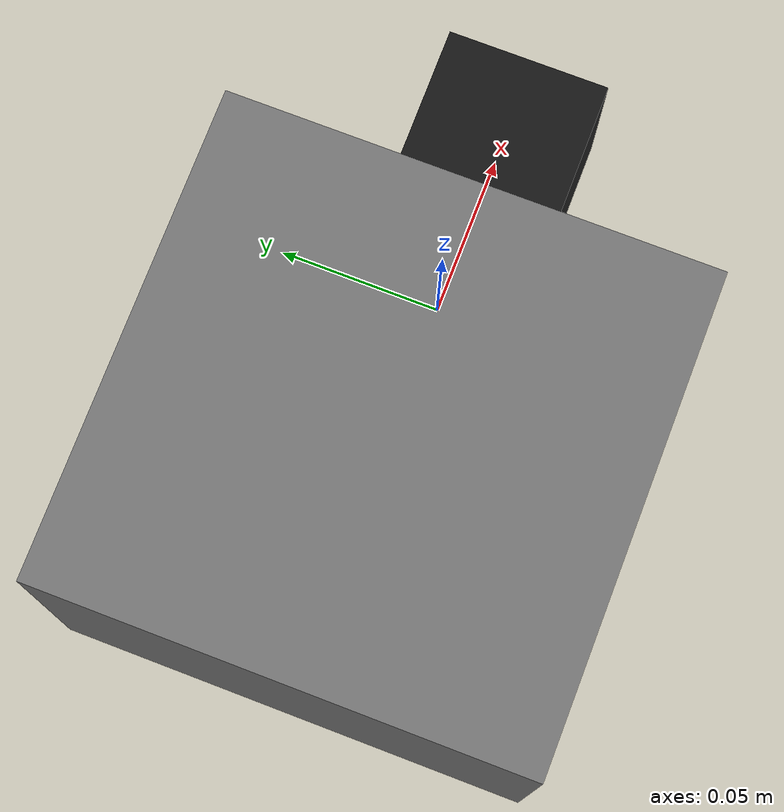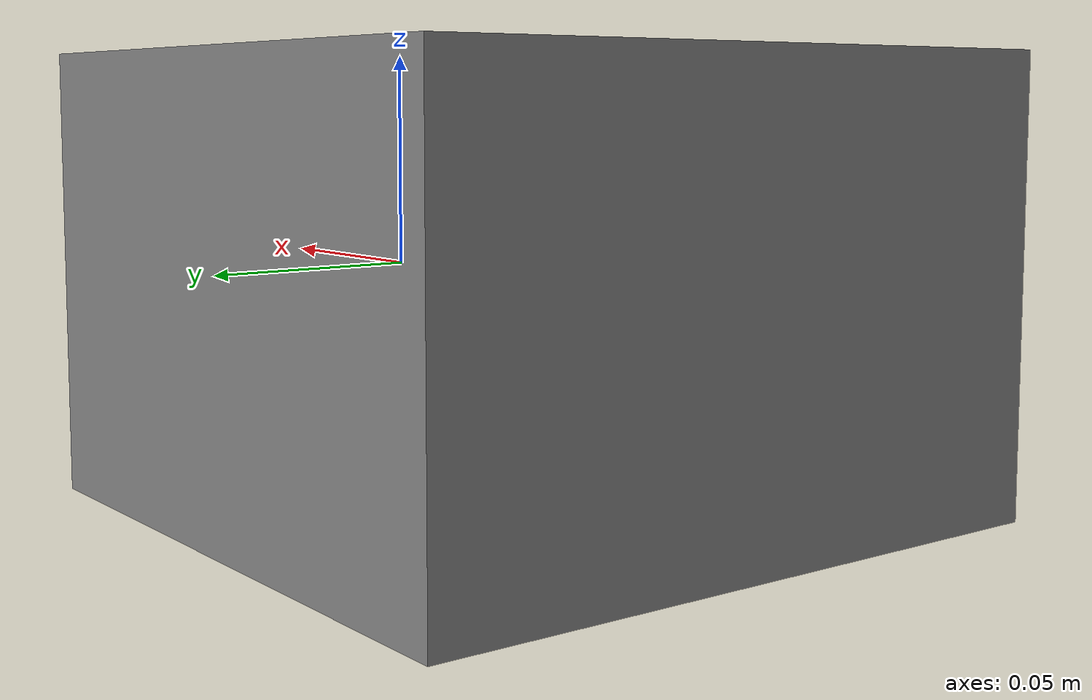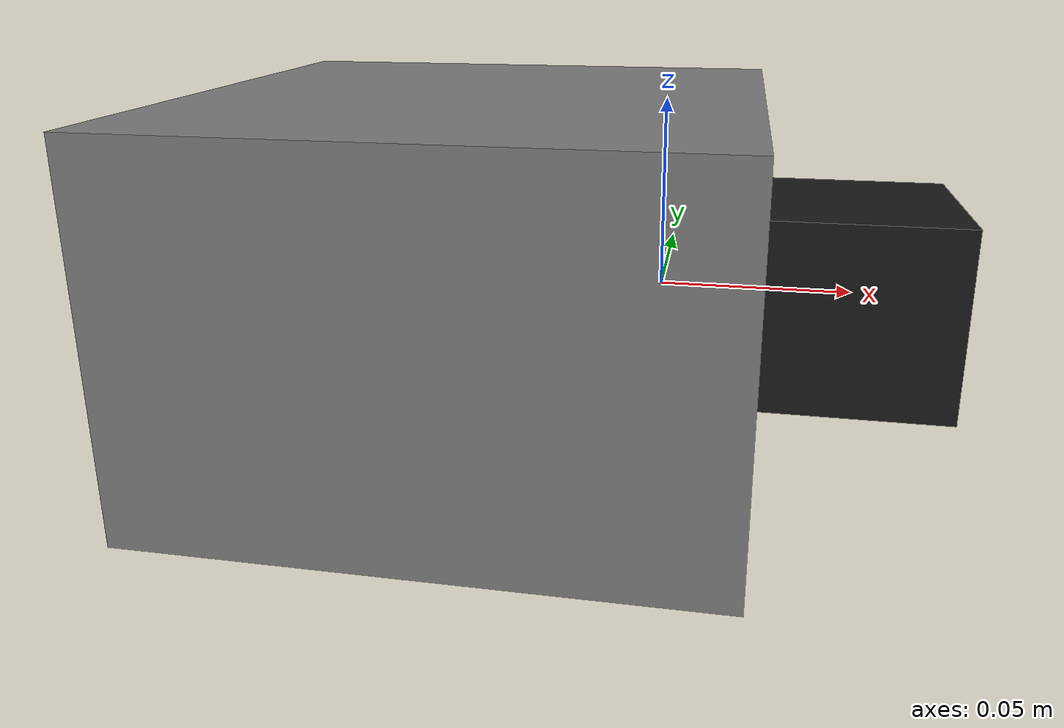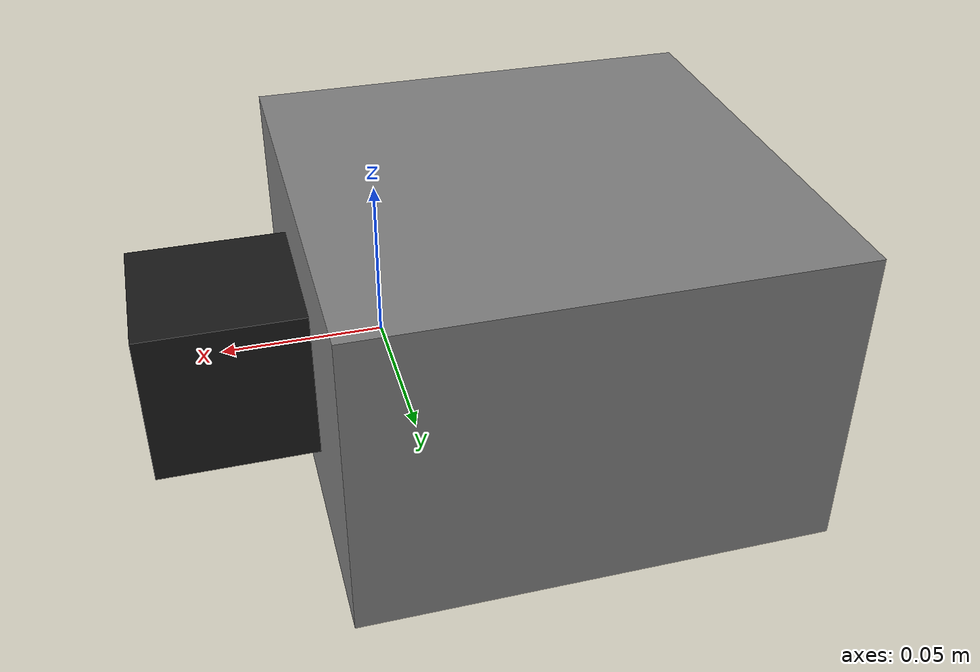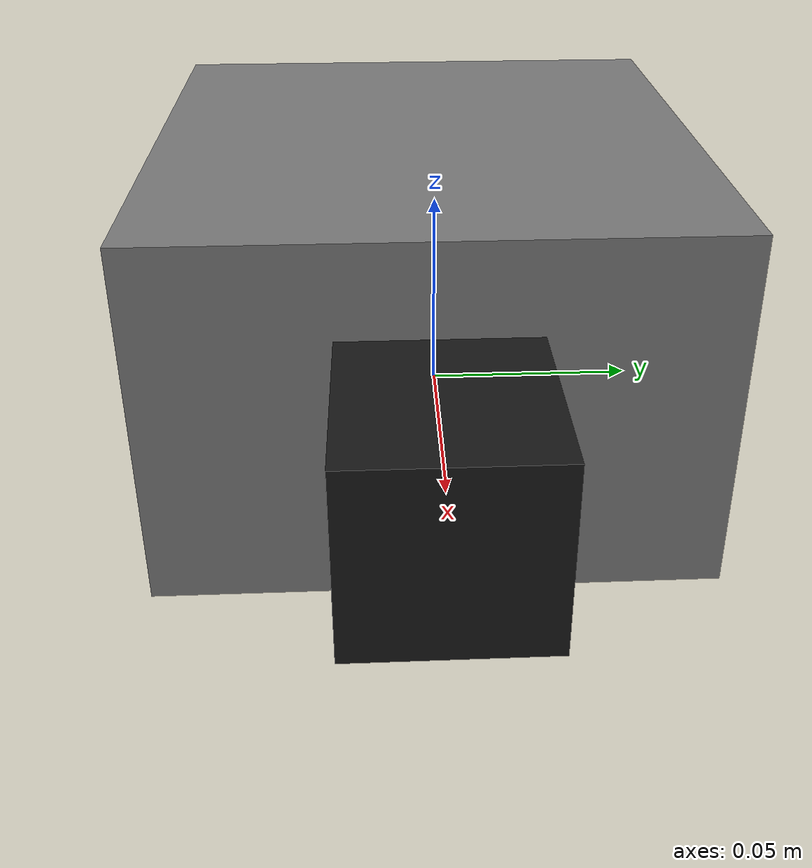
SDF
<?xml version="1.0"?>
<sdf version="1.7">
  <model name="rgbd_camera_robot">
    <static>false</static>

    <!-- Single link with camera -->
    <link name="base_link">
      <pose>0 0 0 0 0 0</pose>
      <gravity>0</gravity>
      <inertial>
        <mass>1.0</mass>
        <inertia>
          <ixx>0.1</ixx>
          <ixy>0</ixy>
          <ixz>0</ixz>
          <iyy>0.1</iyy>
          <iyz>0</iyz>
          <izz>0.1</izz>
        </inertia>
      </inertial>

      <!-- Main body visual -->
      <visual name="base_visual">
        <pose>-0.05 0 0 0 0 0</pose>
        <geometry>
          <box>
            <size>0.15 0.15 0.1</size>
          </box>
        </geometry>
        <material>
          <ambient>0.5 0.5 0.5 1</ambient>
          <diffuse>0.5 0.5 0.5 1</diffuse>
        </material>
      </visual>

      <!-- Camera direction indicator -->
      <visual name="camera_indicator">
        <pose>0.05 0 0 0 0 0</pose>
        <geometry>
          <box>
            <size>0.05 0.05 0.05</size>
          </box>
        </geometry>
        <material>
          <ambient>0.1 0.1 0.1 1</ambient>
          <diffuse>0.1 0.1 0.1 1</diffuse>
        </material>
      </visual>

      <!-- RGB Camera Sensor -->
      <sensor name="rgb_camera" type="camera">
        <pose>0 0 0 0 0 0</pose>
        <camera>
          <horizontal_fov>1.047</horizontal_fov>
          <image>
            <width>640</width>
            <height>480</height>
            <format>R8G8B8</format>
          </image>
          <clip>
            <near>0.1</near>
            <far>50</far>
          </clip>
        </camera>
        <always_on>1</always_on>
        <update_rate>30</update_rate>
        <visualize>true</visualize>
        <topic>ibvs/image_raw</topic>
      </sensor>

      <!-- Depth Camera Sensor -->
      <sensor name="depth_camera" type="depth_camera">
        <pose>0 0 0 0 0 0</pose>
        <camera>
          <horizontal_fov>1.047</horizontal_fov>
          <image>
            <width>640</width>
            <height>480</height>
          </image>
          <clip>
            <near>0.1</near>
            <far>10</far>
          </clip>
        </camera>
        <always_on>1</always_on>
        <update_rate>30</update_rate>
        <visualize>true</visualize>
        <topic>ibvs/depth/image_raw</topic>
      </sensor>
    </link>

    <!-- Velocity control plugin for 6DOF movement -->
    <plugin filename="gz-sim-velocity-control-system" name="gz::sim::systems::VelocityControl">
      <link_name>base_link</link_name>
      <topic>ibvs/cmd_vel</topic>
      <enable_angular_velocity>true</enable_angular_velocity>
      <enable_linear_velocity>true</enable_linear_velocity>
    </plugin>
  </model>
</sdf>
